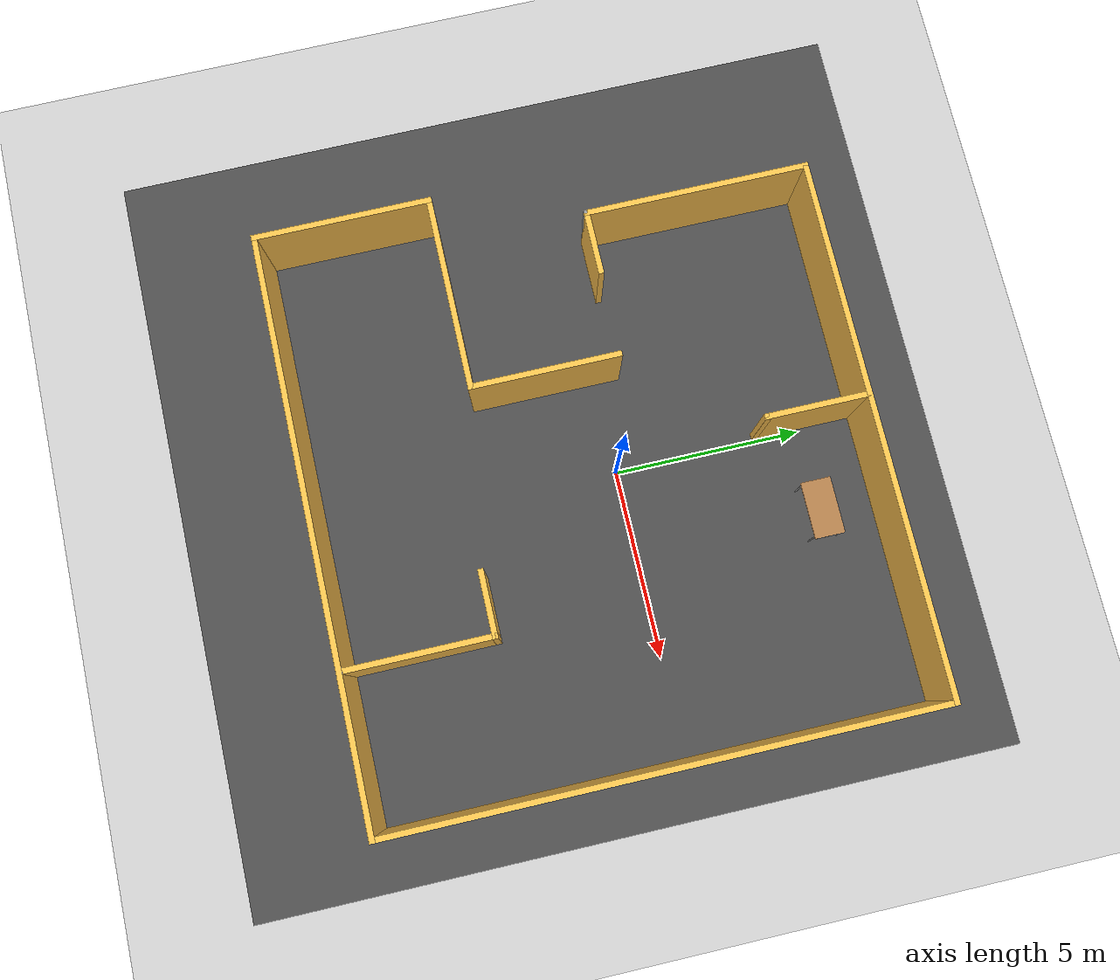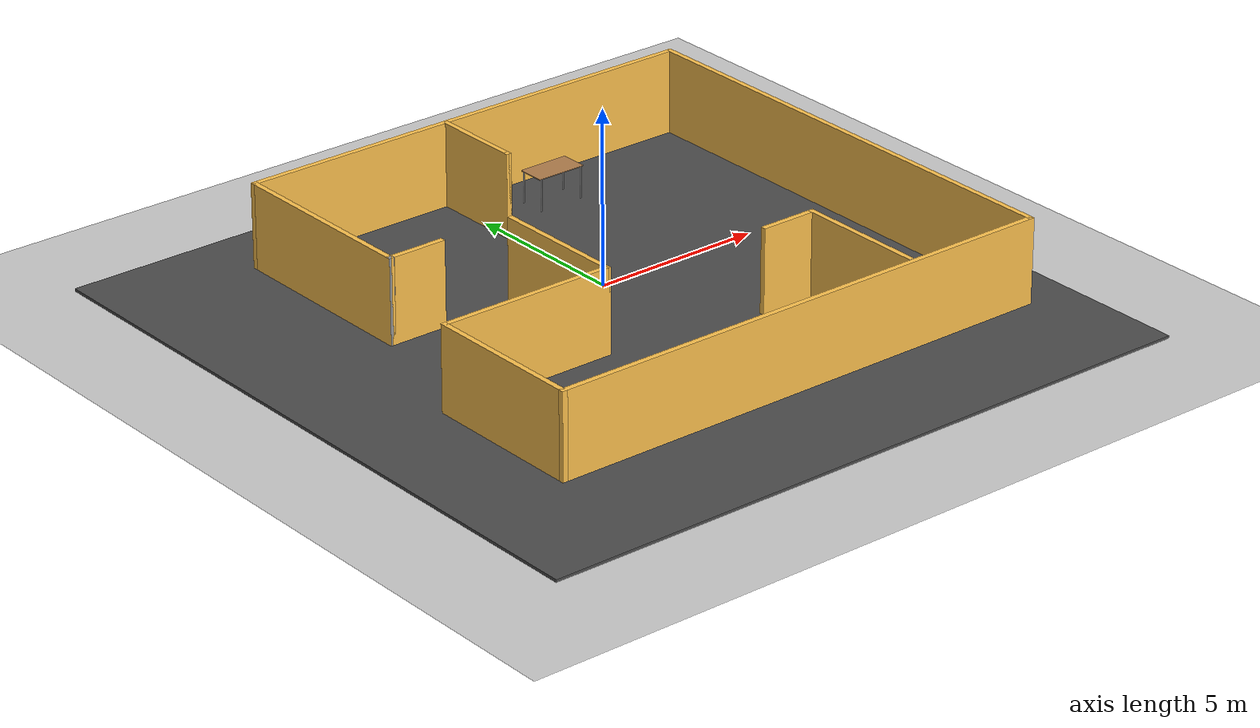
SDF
<sdf version="1.7">
 <world name="default">
  <light name="sun" type="directional">
   <pose>0 0 10 0 -0 0</pose>
   <diffuse>0.8 0.8 0.8 1</diffuse>
   <specular>0.2 0.2 0.2 1</specular>
   <attenuation>
    <range>1000</range>
    <constant>0.9</constant>
    <linear>0.01</linear>
    <quadratic>0.001</quadratic>
   </attenuation>
   <direction>-0.5 0.1 -0.9</direction>
   <spot><inner_angle>0</inner_angle><outer_angle>0</outer_angle><falloff>0</falloff></spot>
  </light>
  <model name="ground_plane">
   <static>1</static>
   <link name="link">
    <collision name="collision">
     <geometry><plane><normal>0 0 1</normal><size>100 100</size></plane></geometry>
     <surface>
      <contact><collide_bitmask>65535</collide_bitmask></contact>
      <friction><ode><mu>100</mu><mu2>50</mu2></ode></friction>
     </surface>
    </collision>
    <visual name="visual">
     <cast_shadows>0</cast_shadows>
     <geometry><plane><normal>0 0 1</normal><size>100 100</size></plane></geometry>
     <material>
      <script><uri>file://media/materials/scripts/gazebo.material</uri><name>Gazebo/Grey</name></script>
     </material>
    </visual>
   </link>
  </model>
  <gravity>0 0 -9.8</gravity>
  <magnetic_field>6e-06 2.3e-05 -4.2e-05</magnetic_field>
  <atmosphere type="adiabatic"/>
  <physics type="ode">
   <max_step_size>0.001</max_step_size>
   <real_time_factor>1</real_time_factor>
   <real_time_update_rate>1000</real_time_update_rate>
  </physics>
  <scene><ambient>0.4 0.4 0.4 1</ambient><background>0.7 0.7 0.7 1</background><shadows>1</shadows></scene>
  <spherical_coordinates>
   <surface_model>EARTH_WGS84</surface_model>
   <latitude_deg>0</latitude_deg>
   <longitude_deg>0</longitude_deg>
   <elevation>0</elevation>
   <heading_deg>0</heading_deg>
  </spherical_coordinates>
  <model name="sathyaworld.world">
   <pose>0.020391 -0.695218 0 0 -0 0</pose>
   <link name="Wall_10">
    <collision name="Wall_10_Collision">
     <geometry><box><size>5.25 0.15 2.5</size></box></geometry>
     <pose>0 0 1.25 0 -0 0</pose>
    </collision>
    <visual name="Wall_10_Visual">
     <pose>0 0 1.25 0 -0 0</pose>
     <geometry><box><size>5.25 0.15 2.5</size></box></geometry>
     <material>
      <script><uri>file://media/materials/scripts/gazebo.material</uri><name>Gazebo/Grey</name></script>
      <ambient>1 0.764706 0.305882 1</ambient>
     </material>
     <meta><layer>0</layer></meta>
    </visual>
    <pose>-5.125 -2.575 0 0 -0 0</pose>
   </link>
   <link name="Wall_11">
    <collision name="Wall_11_Collision">
     <geometry><box><size>4 0.15 2.5</size></box></geometry>
     <pose>0 0 1.25 0 -0 0</pose>
    </collision>
    <visual name="Wall_11_Visual">
     <pose>0 0 1.25 0 -0 0</pose>
     <geometry><box><size>4 0.15 2.5</size></box></geometry>
     <material>
      <script><uri>file://media/materials/scripts/gazebo.material</uri><name>Gazebo/Grey</name></script>
      <ambient>1 0.764706 0.305882 1</ambient>
     </material>
     <meta><layer>0</layer></meta>
    </visual>
    <pose>-2.575 -0.65 0 0 -0 1.5708</pose>
   </link>
   <link name="Wall_18">
    <collision name="Wall_18_Collision">
     <geometry><box><size>6 0.15 2.5</size></box></geometry>
     <pose>0 0 1.25 0 -0 0</pose>
    </collision>
    <visual name="Wall_18_Visual">
     <pose>0 0 1.25 0 -0 0</pose>
     <geometry><box><size>6 0.15 2.5</size></box></geometry>
     <material>
      <script><uri>file://media/materials/scripts/gazebo.material</uri><name>Gazebo/Grey</name></script>
      <ambient>1 0.764706 0.305882 1</ambient>
     </material>
     <meta><layer>0</layer></meta>
    </visual>
    <pose>-6.425 4.25 0 0 -0 -1.5708</pose>
   </link>
   <link name="Wall_19">
    <collision name="Wall_19_Collision">
     <geometry><box><size>0.16 0.15 2.5</size></box></geometry>
     <pose>0 0 1.25 0 -0 0</pose>
    </collision>
    <visual name="Wall_19_Visual">
     <pose>0 0 1.25 0 -0 0</pose>
     <geometry><box><size>0.16 0.15 2.5</size></box></geometry>
     <material>
      <script><uri>file://media/materials/scripts/gazebo.material</uri><name>Gazebo/Grey</name></script>
      <ambient>1 1 1 1</ambient>
     </material>
     <meta><layer>0</layer></meta>
    </visual>
    <pose>-6.42 1.325 0 0 -0 0</pose>
   </link>
   <link name="Wall_20">
    <collision name="Wall_20_Collision">
     <geometry><box><size>1.75 0.15 2.5</size></box></geometry>
     <pose>0 0 1.25 0 -0 0</pose>
    </collision>
    <visual name="Wall_20_Visual">
     <pose>0 0 1.25 0 -0 0</pose>
     <geometry><box><size>1.75 0.15 2.5</size></box></geometry>
     <material>
      <script><uri>file://media/materials/scripts/gazebo.material</uri><name>Gazebo/Grey</name></script>
      <ambient>1 0.764706 0.305882 1</ambient>
     </material>
     <meta><layer>0</layer></meta>
    </visual>
    <pose>-5.615 1.325 0 0 -0 0</pose>
   </link>
   <link name="Wall_22">
    <collision name="Wall_22_Collision">
     <geometry><box><size>2.75 0.15 2.5</size></box></geometry>
     <pose>0 0 1.25 0 -0 0</pose>
    </collision>
    <visual name="Wall_22_Visual">
     <pose>0 0 1.25 0 -0 0</pose>
     <geometry><box><size>2.75 0.15 2.5</size></box></geometry>
     <material>
      <script><uri>file://media/materials/scripts/gazebo.material</uri><name>Gazebo/Grey</name></script>
      <ambient>1 0.764706 0.305882 1</ambient>
     </material>
     <meta><layer>0</layer></meta>
    </visual>
    <pose>-0.165208 5.8215 0 0 -0 -1.5708</pose>
   </link>
   <link name="Wall_23">
    <collision name="Wall_23_Collision">
     <geometry><box><size>0.16 0.15 2.5</size></box></geometry>
     <pose>0 0 1.25 0 -0 0</pose>
    </collision>
    <visual name="Wall_23_Visual">
     <pose>0 0 1.25 0 -0 0</pose>
     <geometry><box><size>0.16 0.15 2.5</size></box></geometry>
     <material>
      <script><uri>file://media/materials/scripts/gazebo.material</uri><name>Gazebo/Grey</name></script>
      <ambient>1 0.764706 0.305882 1</ambient>
     </material>
     <meta><layer>0</layer></meta>
    </visual>
    <pose>-0.160208 4.5215 0 0 -0 0</pose>
   </link>
   <link name="Wall_25">
    <collision name="Wall_25_Collision">
     <geometry><box><size>0.16 0.15 2.5</size></box></geometry>
     <pose>0 0 1.25 0 -0 0</pose>
    </collision>
    <visual name="Wall_25_Visual">
     <pose>0 0 1.25 0 -0 0</pose>
     <geometry><box><size>0.16 0.15 2.5</size></box></geometry>
     <material>
      <script><uri>file://media/materials/scripts/gazebo.material</uri><name>Gazebo/Grey</name></script>
      <ambient>1 1 1 1</ambient>
     </material>
     <meta><layer>0</layer></meta>
    </visual>
    <pose>3.63847 -7.16367 0 0 -0 0</pose>
   </link>
   <link name="Wall_26">
    <collision name="Wall_26_Collision">
     <geometry><box><size>4 0.15 2.5</size></box></geometry>
     <pose>0 0 1.25 0 -0 0</pose>
    </collision>
    <visual name="Wall_26_Visual">
     <pose>0 0 1.25 0 -0 0</pose>
     <geometry><box><size>4 0.15 2.5</size></box></geometry>
     <material>
      <script><uri>file://media/materials/scripts/gazebo.material</uri><name>Gazebo/Grey</name></script>
      <ambient>1 0.764706 0.305882 1</ambient>
     </material>
     <meta><layer>0</layer></meta>
    </visual>
    <pose>3.64347 -5.23867 0 0 -0 1.5708</pose>
   </link>
   <link name="Wall_27">
    <collision name="Wall_27_Collision">
     <geometry><box><size>1.75 0.15 2.5</size></box></geometry>
     <pose>0 0 1.25 0 -0 0</pose>
    </collision>
    <visual name="Wall_27_Visual">
     <pose>0 0 1.25 0 -0 0</pose>
     <geometry><box><size>1.75 0.15 2.5</size></box></geometry>
     <material>
      <script><uri>file://media/materials/scripts/gazebo.material</uri><name>Gazebo/Grey</name></script>
      <ambient>1 0.764706 0.305882 1</ambient>
     </material>
     <meta><layer>0</layer></meta>
    </visual>
    <pose>2.84347 -3.31367 0 0 -0 3.14159</pose>
   </link>
   <link name="Wall_6">
    <collision name="Wall_6_Collision">
     <geometry><box><size>14.25 0.15 2.5</size></box></geometry>
     <pose>0 0 1.25 0 -0 0</pose>
    </collision>
    <visual name="Wall_6_Visual">
     <pose>0 0 1.25 0 -0 0</pose>
     <geometry><box><size>14.25 0.15 2.5</size></box></geometry>
     <material>
      <script><uri>file://media/materials/scripts/gazebo.material</uri><name>Gazebo/Grey</name></script>
      <ambient>1 0.764706 0.305882 1</ambient>
     </material>
     <meta><layer>0</layer></meta>
    </visual>
    <pose>0.625 7.175 0 0 -0 0</pose>
   </link>
   <link name="Wall_7">
    <collision name="Wall_7_Collision">
     <geometry><box><size>14.5 0.15 2.5</size></box></geometry>
     <pose>0 0 1.25 0 -0 0</pose>
    </collision>
    <visual name="Wall_7_Visual">
     <pose>0 0 1.25 0 -0 0</pose>
     <geometry><box><size>14.5 0.15 2.5</size></box></geometry>
     <material>
      <script><uri>file://media/materials/scripts/gazebo.material</uri><name>Gazebo/Grey</name></script>
      <ambient>1 0.764706 0.305882 1</ambient>
     </material>
     <meta><layer>0</layer></meta>
    </visual>
    <pose>7.675 0 0 0 -0 -1.5708</pose>
   </link>
   <link name="Wall_8">
    <collision name="Wall_8_Collision">
     <geometry><box><size>15.5 0.15 2.5</size></box></geometry>
     <pose>0 0 1.25 0 -0 0</pose>
    </collision>
    <visual name="Wall_8_Visual">
     <pose>0 0 1.25 0 -0 0</pose>
     <geometry><box><size>15.5 0.15 2.5</size></box></geometry>
     <material>
      <script><uri>file://media/materials/scripts/gazebo.material</uri><name>Gazebo/Grey</name></script>
      <ambient>1 0.764706 0.305882 1</ambient>
     </material>
     <meta><layer>0</layer></meta>
    </visual>
    <pose>-0 -7.175 0 0 -0 3.14159</pose>
   </link>
   <link name="Wall_9">
    <collision name="Wall_9_Collision">
     <geometry><box><size>4.75 0.15 2.5</size></box></geometry>
     <pose>0 0 1.25 0 -0 0</pose>
    </collision>
    <visual name="Wall_9_Visual">
     <pose>0 0 1.25 0 -0 0</pose>
     <geometry><box><size>4.75 0.15 2.5</size></box></geometry>
     <material>
      <script><uri>file://media/materials/scripts/gazebo.material</uri><name>Gazebo/Grey</name></script>
      <ambient>1 0.764706 0.305882 1</ambient>
     </material>
     <meta><layer>0</layer></meta>
    </visual>
    <pose>-7.675 -4.875 0 0 -0 1.5708</pose>
   </link>
   <static>1</static>
  </model>
  <model name="table">
   <static>1</static>
   <link name="link">
    <collision name="surface">
     <pose>0 0 1 0 -0 0</pose>
     <geometry><box><size>1.5 0.8 0.03</size></box></geometry>
     <surface><friction><ode><mu>0.6</mu><mu2>0.6</mu2></ode></friction></surface>
    </collision>
    <visual name="visual1">
     <pose>0 0 1 0 -0 0</pose>
     <geometry><box><size>1.5 0.8 0.03</size></box></geometry>
     <material>
      <script><uri>file://media/materials/scripts/gazebo.material</uri><name>Gazebo/Wood</name></script>
     </material>
    </visual>
    <collision name="front_left_leg">
     <pose>0.68 0.38 0.5 0 -0 0</pose>
     <geometry><cylinder><radius>0.02</radius><length>1</length></cylinder></geometry>
    </collision>
    <visual name="front_left_leg">
     <pose>0.68 0.38 0.5 0 -0 0</pose>
     <geometry><cylinder><radius>0.02</radius><length>1</length></cylinder></geometry>
     <material>
      <script><uri>file://media/materials/scripts/gazebo.material</uri><name>Gazebo/Grey</name></script>
     </material>
    </visual>
    <collision name="front_right_leg">
     <pose>0.68 -0.38 0.5 0 -0 0</pose>
     <geometry><cylinder><radius>0.02</radius><length>1</length></cylinder></geometry>
    </collision>
    <visual name="front_right_leg">
     <pose>0.68 -0.38 0.5 0 -0 0</pose>
     <geometry><cylinder><radius>0.02</radius><length>1</length></cylinder></geometry>
     <material>
      <script><uri>file://media/materials/scripts/gazebo.material</uri><name>Gazebo/Grey</name></script>
     </material>
    </visual>
    <collision name="back_right_leg">
     <pose>-0.68 -0.38 0.5 0 -0 0</pose>
     <geometry><cylinder><radius>0.02</radius><length>1</length></cylinder></geometry>
    </collision>
    <visual name="back_right_leg">
     <pose>-0.68 -0.38 0.5 0 -0 0</pose>
     <geometry><cylinder><radius>0.02</radius><length>1</length></cylinder></geometry>
     <material>
      <script><uri>file://media/materials/scripts/gazebo.material</uri><name>Gazebo/Grey</name></script>
     </material>
    </visual>
    <collision name="back_left_leg">
     <pose>-0.68 0.38 0.5 0 -0 0</pose>
     <geometry><cylinder><radius>0.02</radius><length>1</length></cylinder></geometry>
    </collision>
    <visual name="back_left_leg">
     <pose>-0.68 0.38 0.5 0 -0 0</pose>
     <geometry><cylinder><radius>0.02</radius><length>1</length></cylinder></geometry>
     <material>
      <script><uri>file://media/materials/scripts/gazebo.material</uri><name>Gazebo/Grey</name></script>
     </material>
    </visual>
   </link>
   <pose>2.24251 4.91411 0 0 -0 0</pose>
  </model>
  <model name="asphalt_plane">
   <static>1</static>
   <link name="link">
    <collision name="collision"><geometry><box><size>20 20 0.1</size></box></geometry></collision>
    <visual name="visual">
     <cast_shadows>0</cast_shadows>
     <geometry><box><size>20 20 0.1</size></box></geometry>
     <material>
      <script>
       <uri>model://asphalt_plane/materials/scripts</uri>
       <uri>model://asphalt_plane/materials/textures</uri>
       <name>vrc/asphalt</name>
      </script>
     </material>
    </visual>
   </link>
   <pose>-0.806544 -1.52015 0 0 -0 0</pose>
  </model>
 </world>
</sdf>
